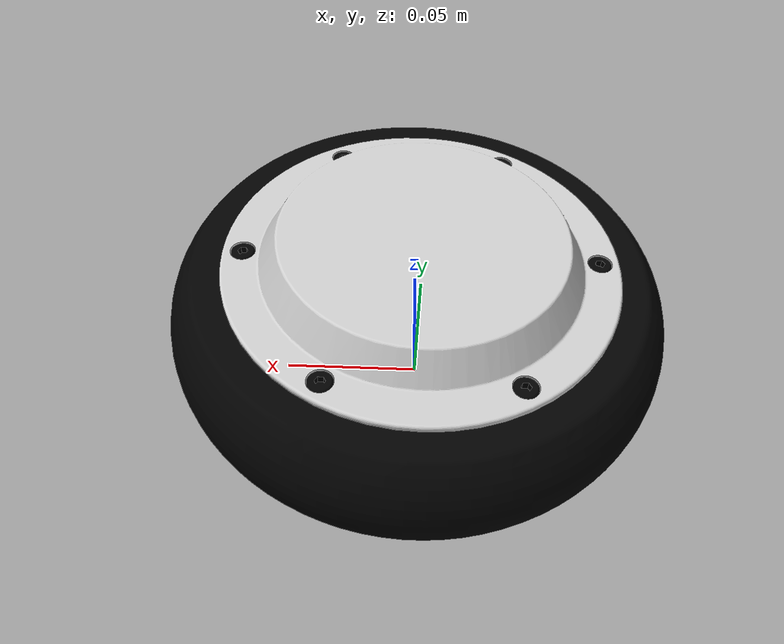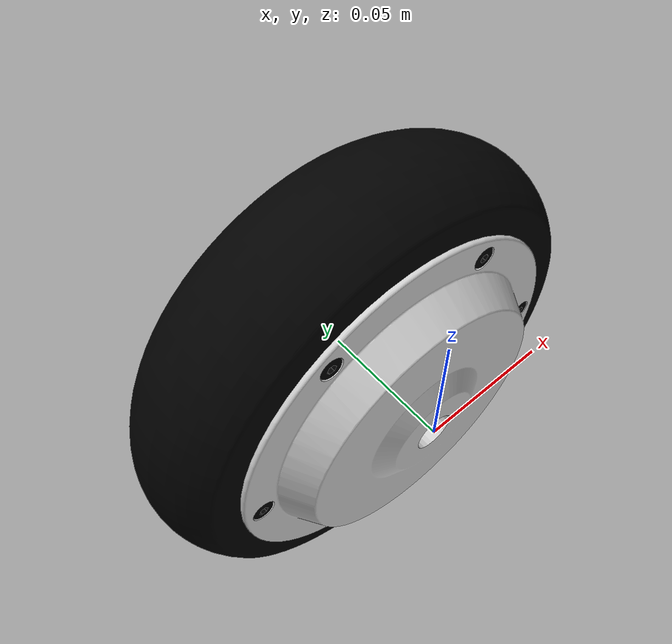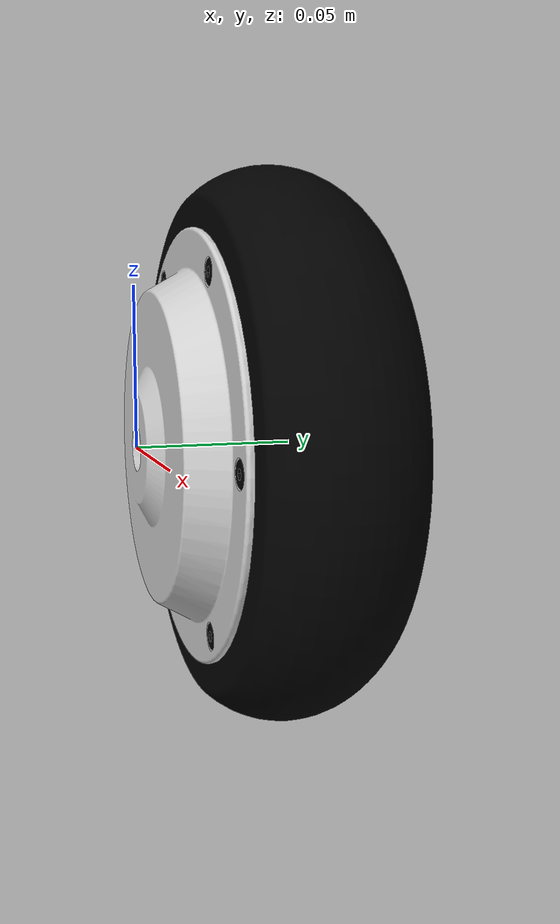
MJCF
<mujoco model="wheel_l2">
  <default>
    <default class="visual">
      <geom group="2" type="mesh" contype="0" conaffinity="0"/>
    </default>
    <default class="collision">
      <geom group="3" type="mesh"/>
    </default>
  </default>
  <asset>
    <material name="material_0" specular="0.4000000000000001" shininess="0.001" rgba="0.00000000 0.00000000 0.00000000 1.0"/>
    <material name="material_1" specular="0.4000000000000001" shininess="0.001" rgba="0.80000000 0.80000000 0.80000000 1.0"/>
    <mesh file="wheel_l2_0.obj"/>
    <mesh file="wheel_l2_1.obj"/>
  </asset>
  <worldbody>
    <body name="wheel_l2">
      <geom mesh="wheel_l2_0" material="material_1" class="visual"/>
      <geom mesh="wheel_l2_1" material="material_0" class="visual"/>
    </body>
  </worldbody>
</mujoco>
